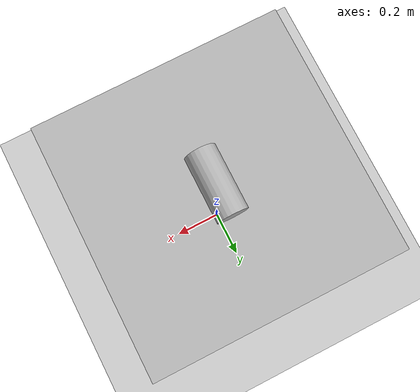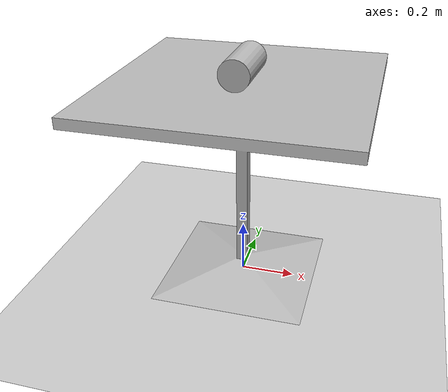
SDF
<sdf version="1.7">
 <world name="default">
  <light name="sun" type="directional">
   <pose>0 0 10 0 -0 0</pose>
   <diffuse>0.8 0.8 0.8 1</diffuse>
   <specular>0.2 0.2 0.2 1</specular>
   <attenuation>
    <range>1000</range>
    <constant>0.9</constant>
    <linear>0.01</linear>
    <quadratic>0.001</quadratic>
   </attenuation>
   <direction>-0.5 0.1 -0.9</direction>
   <spot><inner_angle>0</inner_angle><outer_angle>0</outer_angle><falloff>0</falloff></spot>
  </light>
  <model name="ground_plane">
   <static>1</static>
   <link name="link">
    <collision name="collision">
     <geometry><plane><normal>0 0 1</normal><size>100 100</size></plane></geometry>
     <surface>
      <contact><collide_bitmask>65535</collide_bitmask></contact>
      <friction><ode><mu>100</mu><mu2>50</mu2></ode></friction>
     </surface>
    </collision>
    <visual name="visual">
     <cast_shadows>0</cast_shadows>
     <geometry><plane><normal>0 0 1</normal><size>100 100</size></plane></geometry>
     <material>
      <script><uri>file://media/materials/scripts/gazebo.material</uri><name>Gazebo/Grey</name></script>
     </material>
    </visual>
   </link>
  </model>
  <gravity>0 0 -9.8</gravity>
  <magnetic_field>6e-06 2.3e-05 -4.2e-05</magnetic_field>
  <atmosphere type="adiabatic"/>
  <physics type="ode">
   <max_step_size>0.001</max_step_size>
   <real_time_factor>1</real_time_factor>
   <real_time_update_rate>1000</real_time_update_rate>
  </physics>
  <scene><ambient>0.4 0.4 0.4 1</ambient><background>0.7 0.7 0.7 1</background><shadows>1</shadows></scene>
  <spherical_coordinates>
   <surface_model>EARTH_WGS84</surface_model>
   <latitude_deg>0</latitude_deg>
   <longitude_deg>0</longitude_deg>
   <elevation>0</elevation>
   <heading_deg>0</heading_deg>
  </spherical_coordinates>
  <model name="beer">
   <link name="link">
    <pose>0 0 0.115 0 -0 0</pose>
    <inertial>
     <mass>0.39</mass>
     <inertia><ixx>0.00058</ixx><ixy>0</ixy><ixz>0</ixz><iyy>0.00058</iyy><iyz>0</iyz><izz>0.00019</izz></inertia>
    </inertial>
    <collision name="collision">
     <geometry><cylinder><radius>0.055</radius><length>0.23</length></cylinder></geometry>
    </collision>
    <visual name="visual">
     <geometry><cylinder><radius>0.055</radius><length>0.23</length></cylinder></geometry>
     <material>
      <script>
       <uri>model://beer/materials/scripts</uri>
       <uri>model://beer/materials/textures</uri>
       <name>Beer/Diffuse</name>
      </script>
     </material>
    </visual>
   </link>
   <pose>-0 -0.12 0.83 -1.5708 -1.50229 -1.4e-05</pose>
  </model>
  <model name="cafe_table">
   <static>1</static>
   <link name="link">
    <collision name="surface">
     <pose>0 0 0.755 0 -0 0</pose>
     <geometry><box><size>0.913 0.913 0.04</size></box></geometry>
    </collision>
    <collision name="column">
     <pose>0 0 0.37 0 -0 0</pose>
     <geometry><box><size>0.042 0.042 0.74</size></box></geometry>
    </collision>
    <collision name="base">
     <pose>0 0 0.02 0 -0 0</pose>
     <geometry><box><size>0.56 0.56 0.04</size></box></geometry>
    </collision>
    <visual name="visual">
     <geometry><mesh><uri>model://cafe_table/meshes/cafe_table.dae</uri></mesh></geometry>
    </visual>
   </link>
  </model>
 </world>
</sdf>
